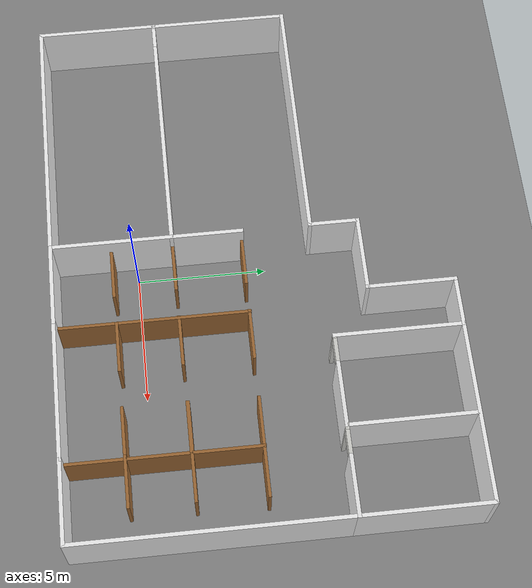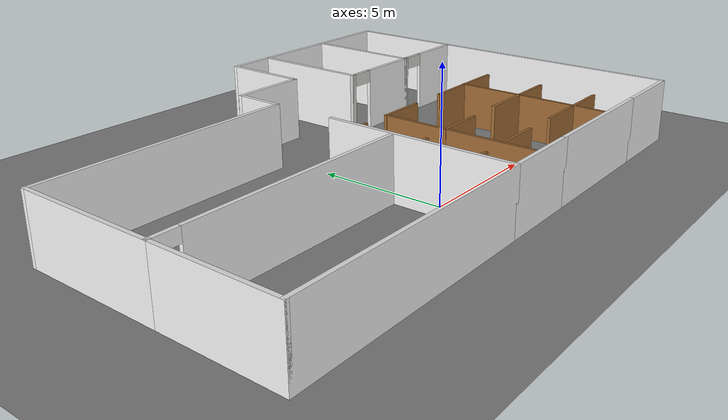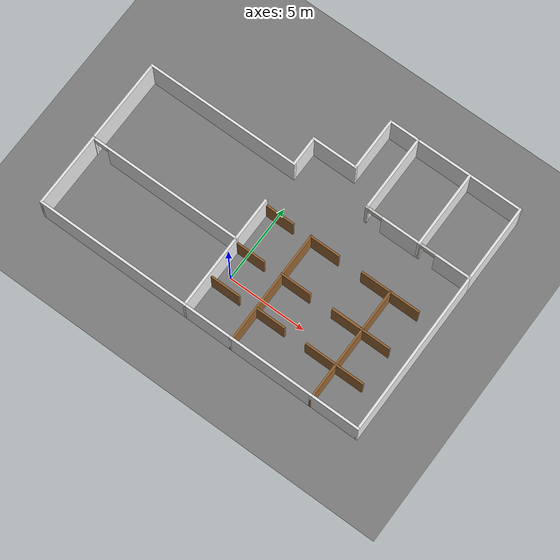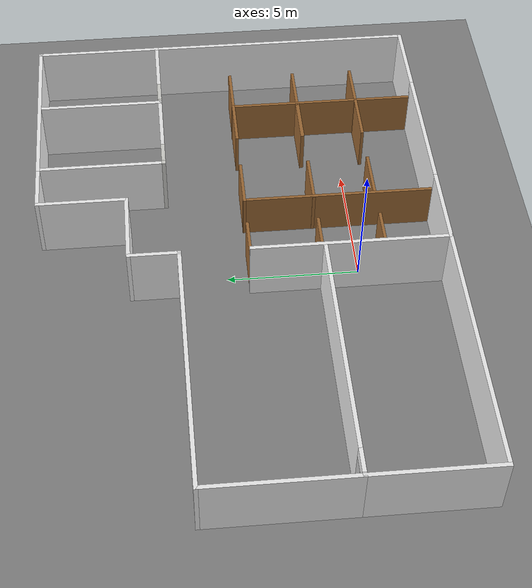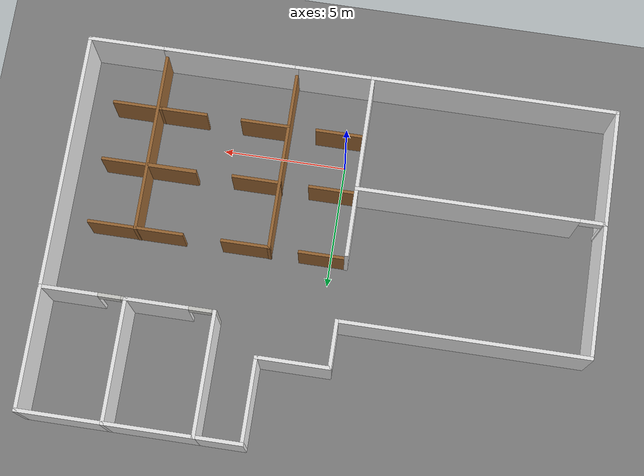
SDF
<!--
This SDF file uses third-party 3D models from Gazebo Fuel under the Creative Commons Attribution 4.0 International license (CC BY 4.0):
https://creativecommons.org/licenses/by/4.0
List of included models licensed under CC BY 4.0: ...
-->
<sdf version="1.9">
 <world name="office">
  <physics name="default_physics" type="ode">
   <max_step_size>0.0025</max_step_size>
   <real_time_factor>1</real_time_factor>
  </physics>
  <plugin name="gz::sim::systems::Physics" filename="gz-sim-physics-system"/>
  <plugin name="gz::sim::systems::UserCommands" filename="gz-sim-user-commands-system"/>
  <plugin name="gz::sim::systems::SceneBroadcaster" filename="gz-sim-scene-broadcaster-system"/>
  <plugin name="gz::sim::systems::Imu" filename="gz-sim-imu-system"/>
  <plugin name="gz::sim::systems::Sensors" filename="gz-sim-sensors-system">
   <render_engine>ogre2</render_engine>
  </plugin>
  <scene>
   <ambient>1 1 1 1</ambient>
   <background>0.3 0.7 0.9 1</background>
   <shadows>0</shadows>
   <grid>1</grid>
  </scene>
  <model name="ground_plane">
   <static>1</static>
   <link name="link">
    <collision name="collision">
     <geometry><plane><normal>0 0 1</normal><size>100 100</size></plane></geometry>
    </collision>
    <visual name="visual">
     <cast_shadows>0</cast_shadows>
     <geometry><plane><normal>0 0 1</normal><size>100 100</size></plane></geometry>
     <material>
      <ambient>0.95 0.95 0.95 1</ambient>
      <diffuse>0.5 0.5 0.5 1</diffuse>
      <specular>0.1 0.1 0.1 1</specular>
     </material>
    </visual>
   </link>
  </model>
  <light type="directional" name="directional_light">
   <pose>0 0 10 0 0 0</pose>
   <diffuse>0.8 0.8 0.8 1</diffuse>
   <specular>0.2 0.2 0.2 1</specular>
   <attenuation>
    <range>20</range>
    <constant>0.9</constant>
    <linear>0.01</linear>
    <quadratic>0.001</quadratic>
   </attenuation>
   <direction>-0.5 0.1 -0.9</direction>
  </light>
  <model name="office_wall">
   <pose>0.2046 4.41336 0 0 0 0</pose>
   <link name="Wall_Around_1">
    <collision name="Wall_Around_1_Collision">
     <geometry><box><size>5.5 0.15 2.5</size></box></geometry>
     <pose>0 0 1.25 0 0 0</pose>
    </collision>
    <visual name="Wall_Around_1_Visual">
     <pose>0 0 1.25 0 0 0</pose>
     <geometry><box><size>5.5 0.15 2.5</size></box></geometry>
     <material>
      <script><uri>file://media/materials/scripts/gazebo.material</uri><name>Gazebo/White</name></script>
      <ambient>0.435294 0.796078 0.67451 1</ambient>
     </material>
     <meta><layer>0</layer></meta>
    </visual>
    <pose>4.925 -7.6 0 0 0 0</pose>
   </link>
   <link name="Wall_Around_2">
    <collision name="Wall_Around_2_Collision">
     <geometry><box><size>3.25 0.15 2.5</size></box></geometry>
     <pose>0 0 1.25 0 0 0</pose>
    </collision>
    <visual name="Wall_Around_2_Visual">
     <pose>0 0 1.25 0 0 0</pose>
     <geometry><box><size>3.25 0.15 2.5</size></box></geometry>
     <material>
      <script><uri>file://media/materials/scripts/gazebo.material</uri><name>Gazebo/White</name></script>
      <ambient>0.435294 0.796078 0.67451 1</ambient>
     </material>
     <meta><layer>0</layer></meta>
    </visual>
    <pose>9.15 -7.6 0 0 0 0</pose>
   </link>
   <link name="Wall_Around_3">
    <collision name="Wall_Around_3_Collision">
     <geometry><box><size>10.5 0.15 2.5</size></box></geometry>
     <pose>0 0 1.25 0 0 0</pose>
    </collision>
    <visual name="Wall_Around_3_Visual">
     <pose>0 0 1.25 0 0 0</pose>
     <geometry><box><size>10.5 0.15 2.5</size></box></geometry>
     <material>
      <script><uri>file://media/materials/scripts/gazebo.material</uri><name>Gazebo/White</name></script>
      <ambient>0.435294 0.796078 0.67451 1</ambient>
     </material>
     <meta><layer>0</layer></meta>
    </visual>
    <pose>10.7 -2.425 0 0 0 1.5708</pose>
   </link>
   <link name="Wall_Around_4">
    <collision name="Wall_Around_4_Collision">
     <geometry><box><size>5 0.15 2.5</size></box></geometry>
     <pose>0 0 1.25 0 0 0</pose>
    </collision>
    <visual name="Wall_Around_4_Visual">
     <pose>0 0 1.25 0 0 0</pose>
     <geometry><box><size>5 0.15 2.5</size></box></geometry>
     <material>
      <script><uri>file://media/materials/scripts/gazebo.material</uri><name>Gazebo/White</name></script>
      <ambient>0.760784 0.662745 0.627451 1</ambient>
     </material>
     <meta><layer>0</layer></meta>
    </visual>
    <pose>10.7 5.175 0 0 0 1.5708</pose>
   </link>
   <link name="Wall_Around_5">
    <collision name="Wall_Around_5_Collision">
     <geometry><box><size>7 0.15 2.5</size></box></geometry>
     <pose>0 0 1.25 0 0 0</pose>
    </collision>
    <visual name="Wall_Around_5_Visual">
     <pose>0 0 1.25 0 0 0</pose>
     <geometry><box><size>7 0.15 2.5</size></box></geometry>
     <material>
      <script><uri>file://media/materials/scripts/gazebo.material</uri><name>Gazebo/White</name></script>
      <ambient>1 1 1 1</ambient>
     </material>
     <meta><layer>0</layer></meta>
    </visual>
    <pose>7.275 7.6 0 0 0 3.14159</pose>
   </link>
   <link name="Wall_Around_6">
    <collision name="Wall_Around_6_Collision">
     <geometry><box><size>2 0.15 2.5</size></box></geometry>
     <pose>0 0 1.25 0 0 0</pose>
    </collision>
    <visual name="Wall_Around_6_Visual">
     <pose>0 0 1.25 0 0 0</pose>
     <geometry><box><size>2 0.15 2.5</size></box></geometry>
     <material>
      <script><uri>file://media/materials/scripts/gazebo.material</uri><name>Gazebo/White</name></script>
      <ambient>0.760784 0.662745 0.627451 1</ambient>
     </material>
     <meta><layer>0</layer></meta>
    </visual>
    <pose>2.925 7.6 0 0 0 3.14159</pose>
   </link>
   <link name="Wall_Around_7">
    <collision name="Wall_Around_7_Collision">
     <geometry><box><size>3.5 0.15 2.5</size></box></geometry>
     <pose>0 0 1.25 0 0 0</pose>
    </collision>
    <visual name="Wall_Around_7_Visual">
     <pose>0 0 1.25 0 0 0</pose>
     <geometry><box><size>3.5 0.15 2.5</size></box></geometry>
     <material>
      <script><uri>file://media/materials/scripts/gazebo.material</uri><name>Gazebo/White</name></script>
      <ambient>0.760784 0.662745 0.627451 1</ambient>
     </material>
     <meta><layer>0</layer></meta>
    </visual>
    <pose>2 5.925 0 0 0 -1.5708</pose>
   </link>
   <link name="Wall_Around_8">
    <collision name="Wall_Around_8_Collision">
     <geometry><box><size>3 0.15 2.5</size></box></geometry>
     <pose>0 0 1.25 0 0 0</pose>
    </collision>
    <visual name="Wall_Around_8_Visual">
     <pose>0 0 1.25 0 0 0</pose>
     <geometry><box><size>3 0.15 2.5</size></box></geometry>
     <material>
      <script><uri>file://media/materials/scripts/gazebo.material</uri><name>Gazebo/White</name></script>
      <ambient>0.760784 0.662745 0.627451 1</ambient>
     </material>
     <meta><layer>0</layer></meta>
    </visual>
    <pose>0.575 4.25 0 0 0 3.14159</pose>
   </link>
   <link name="Wall_Around_9">
    <collision name="Wall_Around_9_Collision">
     <geometry><box><size>2 0.15 2.5</size></box></geometry>
     <pose>0 0 1.25 0 0 0</pose>
    </collision>
    <visual name="Wall_Around_9_Visual">
     <pose>0 0 1.25 0 0 0</pose>
     <geometry><box><size>2 0.15 2.5</size></box></geometry>
     <material>
      <script><uri>file://media/materials/scripts/gazebo.material</uri><name>Gazebo/White</name></script>
      <ambient>0.760784 0.662745 0.627451 1</ambient>
     </material>
     <meta><layer>0</layer></meta>
    </visual>
    <pose>-0.85 3.325 0 0 0 -1.5708</pose>
   </link>
   <link name="Wall_Around_10">
    <collision name="Wall_Around_10_Collision">
     <geometry><box><size>10 0.15 2.5</size></box></geometry>
     <pose>0 0 1.25 0 0 0</pose>
    </collision>
    <visual name="Wall_Around_10_Visual">
     <pose>0 0 1.25 0 0 0</pose>
     <geometry><box><size>10 0.15 2.5</size></box></geometry>
     <material>
      <script><uri>file://media/materials/scripts/gazebo.material</uri><name>Gazebo/White</name></script>
      <ambient>0.760784 0.662745 0.627451 1</ambient>
     </material>
     <meta><layer>0</layer></meta>
    </visual>
    <pose>-5.775 2.4 0 0 0 3.14159</pose>
   </link>
   <link name="Wall_Around_11">
    <collision name="Wall_Around_11_Collision">
     <geometry><box><size>5.5 0.15 2.5</size></box></geometry>
     <pose>0 0 1.25 0 0 0</pose>
    </collision>
    <visual name="Wall_Around_11_Visual">
     <pose>0 0 1.25 0 0 0</pose>
     <geometry><box><size>5.5 0.15 2.5</size></box></geometry>
     <material>
      <script><uri>file://media/materials/scripts/gazebo.material</uri><name>Gazebo/White</name></script>
      <ambient>0.760784 0.662745 0.627451 1</ambient>
     </material>
     <meta><layer>0</layer></meta>
    </visual>
    <pose>-10.7 -0.275 0 0 0 -1.5708</pose>
   </link>
   <link name="Wall_Around_12">
    <collision name="Wall_Around_12_Collision">
     <geometry><box><size>4.8 0.15 2.5</size></box></geometry>
     <pose>0 0 1.25 0 0 0</pose>
    </collision>
    <visual name="Wall_Around_12_Visual">
     <pose>0 0 1.25 0 0 0</pose>
     <geometry><box><size>4.8 0.15 2.5</size></box></geometry>
     <material>
      <script><uri>file://media/materials/scripts/gazebo.material</uri><name>Gazebo/White</name></script>
      <ambient>1 0.764706 0.305882 1</ambient>
     </material>
     <meta><layer>0</layer></meta>
    </visual>
    <pose>-10.7 -5.275 0 0 0 -1.5708</pose>
   </link>
   <link name="Wall_Around_13">
    <collision name="Wall_Around_13_Collision">
     <geometry><box><size>10 0.15 2.5</size></box></geometry>
     <pose>0 0 1.25 0 0 0</pose>
    </collision>
    <visual name="Wall_Around_13_Visual">
     <pose>0 0 1.25 0 0 0</pose>
     <geometry><box><size>10 0.15 2.5</size></box></geometry>
     <material>
      <script><uri>file://media/materials/scripts/gazebo.material</uri><name>Gazebo/White</name></script>
      <ambient>1 0.764706 0.305882 1</ambient>
     </material>
     <meta><layer>0</layer></meta>
    </visual>
    <pose>-5.775 -7.6 0 0 0 0</pose>
   </link>
   <link name="Wall_Around_14">
    <collision name="Wall_Around_14_Collision">
     <geometry><box><size>3.25 0.15 2.5</size></box></geometry>
     <pose>0 0 1.25 0 0 0</pose>
    </collision>
    <visual name="Wall_Around_14_Visual">
     <pose>0 0 1.25 0 0 0</pose>
     <geometry><box><size>3.25 0.15 2.5</size></box></geometry>
     <material>
      <script><uri>file://media/materials/scripts/gazebo.material</uri><name>Gazebo/White</name></script>
      <ambient>0.435294 0.796078 0.67451 1</ambient>
     </material>
     <meta><layer>0</layer></meta>
    </visual>
    <pose>0.7 -7.6 0 0 0 0</pose>
   </link>
   <link name="Wall_Station_1">
    <collision name="Wall_Station_1_Collision">
     <geometry><box><size>7.5 0.15 2.5</size></box></geometry>
     <pose>0 0 1.25 0 0 0</pose>
    </collision>
    <visual name="Wall_Station_1_Visual">
     <pose>0 0 1.25 0 0 0</pose>
     <geometry><box><size>7.5 0.15 2.5</size></box></geometry>
     <material>
      <script><uri>file://media/materials/scripts/gazebo.material</uri><name>Gazebo/White</name></script>
     </material>
     <meta><layer>0</layer></meta>
    </visual>
    <pose>-0.85 -3.925 0 0 0 1.5708</pose>
   </link>
   <link name="Wall_Station_2">
    <collision name="Wall_Station_2_Collision">
     <geometry><box><size>7.5 0.12 1.8</size></box></geometry>
     <pose>0 0 0.9 0 0 0</pose>
    </collision>
    <visual name="Wall_Station_2_Visual">
     <pose>0 0 0.9 0 0 0</pose>
     <geometry><box><size>7.5 0.12 1.8</size></box></geometry>
     <material><ambient>0.6 0.4 0.2 1</ambient><diffuse>0.6 0.4 0.2 1</diffuse></material>
     <meta><layer>0</layer></meta>
    </visual>
    <pose>2.25 -3.925 0 0 0 1.5708</pose>
   </link>
   <link name="Wall_Station_3">
    <collision name="Wall_Station_3_Collision">
     <geometry><box><size>7.5 0.12 1.8</size></box></geometry>
     <pose>0 0 0.9 0 0 0</pose>
    </collision>
    <visual name="Wall_Station_3_Visual">
     <pose>0 0 0.9 0 0 0</pose>
     <geometry><box><size>7.5 0.12 1.8</size></box></geometry>
     <material><ambient>0.6 0.4 0.2 1</ambient><diffuse>0.6 0.4 0.2 1</diffuse></material>
     <meta><layer>0</layer></meta>
    </visual>
    <pose>7.6 -3.925 0 0 0 1.5708</pose>
   </link>
   <link name="Wall_Station_4">
    <collision name="Wall_Station_4_Collision">
     <geometry><box><size>2 0.12 1.8</size></box></geometry>
     <pose>0 0 0.9 0 0 0</pose>
    </collision>
    <visual name="Wall_Station_4_Visual">
     <pose>0 0 0.9 0 0 0</pose>
     <geometry><box><size>2 0.12 1.8</size></box></geometry>
     <material><ambient>0.6 0.4 0.2 1</ambient><diffuse>0.6 0.4 0.2 1</diffuse></material>
     <meta><layer>0</layer></meta>
    </visual>
    <pose>0.075 -0.25 0 0 0 0</pose>
   </link>
   <link name="Wall_Station_5">
    <collision name="Wall_Station_5_Collision">
     <geometry><box><size>2 0.12 1.8</size></box></geometry>
     <pose>0 0 0.9 0 0 0</pose>
    </collision>
    <visual name="Wall_Station_5_Visual">
     <pose>0 0 0.9 0 0 0</pose>
     <geometry><box><size>2 0.12 1.8</size></box></geometry>
     <material><ambient>0.6 0.4 0.2 1</ambient><diffuse>0.6 0.4 0.2 1</diffuse></material>
     <meta><layer>0</layer></meta>
    </visual>
    <pose>0.075 -2.95 0 0 0 0</pose>
   </link>
   <link name="Wall_Station_6">
    <collision name="Wall_Station_6_Collision">
     <geometry><box><size>2 0.12 1.8</size></box></geometry>
     <pose>0 0 0.9 0 0 0</pose>
    </collision>
    <visual name="Wall_Station_6_Visual">
     <pose>0 0 0.9 0 0 0</pose>
     <geometry><box><size>2 0.12 1.8</size></box></geometry>
     <material><ambient>0.6 0.4 0.2 1</ambient><diffuse>0.6 0.4 0.2 1</diffuse></material>
     <meta><layer>0</layer></meta>
    </visual>
    <pose>0.146673 -5.32593 0 0 0 0</pose>
   </link>
   <link name="Wall_Station_7">
    <collision name="Wall_Station_7_Collision">
     <geometry><box><size>2 0.12 1.8</size></box></geometry>
     <pose>0 0 0.9 0 0 0</pose>
    </collision>
    <visual name="Wall_Station_7_Visual">
     <pose>0 0 0.9 0 0 0</pose>
     <geometry><box><size>2 0.12 1.8</size></box></geometry>
     <material><ambient>0.6 0.4 0.2 1</ambient><diffuse>0.6 0.4 0.2 1</diffuse></material>
     <meta><layer>0</layer></meta>
    </visual>
    <pose>3.175 -0.25 0 0 0 0</pose>
   </link>
   <link name="Wall_Station_8">
    <collision name="Wall_Station_8_Collision">
     <geometry><box><size>2 0.12 1.8</size></box></geometry>
     <pose>0 0 0.9 0 0 0</pose>
    </collision>
    <visual name="Wall_Station_8_Visual">
     <pose>0 0 0.9 0 0 0</pose>
     <geometry><box><size>2 0.12 1.8</size></box></geometry>
     <material><ambient>0.6 0.4 0.2 1</ambient><diffuse>0.6 0.4 0.2 1</diffuse></material>
     <meta><layer>0</layer></meta>
    </visual>
    <pose>3.17073 -2.92995 0 0 0 0</pose>
   </link>
   <link name="Wall_Station_9">
    <collision name="Wall_Station_9_Collision">
     <geometry><box><size>2 0.12 1.8</size></box></geometry>
     <pose>0 0 0.9 0 0 0</pose>
    </collision>
    <visual name="Wall_Station_9_Visual">
     <pose>0 0 0.9 0 0 0</pose>
     <geometry><box><size>2 0.12 1.8</size></box></geometry>
     <material><ambient>0.6 0.4 0.2 1</ambient><diffuse>0.6 0.4 0.2 1</diffuse></material>
     <meta><layer>0</layer></meta>
    </visual>
    <pose>3.19399 -5.30267 0 0 0 0</pose>
   </link>
   <link name="Wall_Station_10">
    <collision name="Wall_Station_10_Collision">
     <geometry><box><size>2 0.12 1.8</size></box></geometry>
     <pose>0 0 0.9 0 0 0</pose>
    </collision>
    <visual name="Wall_Station_10_Visual">
     <pose>0 0 0.9 0 0 0</pose>
     <geometry><box><size>2 0.12 1.8</size></box></geometry>
     <material><ambient>0.6 0.4 0.2 1</ambient><diffuse>0.6 0.4 0.2 1</diffuse></material>
     <meta><layer>0</layer></meta>
    </visual>
    <pose>6.675 -0.25 0 0 0 3.14159</pose>
   </link>
   <link name="Wall_Station_11">
    <collision name="Wall_Station_11_Collision">
     <geometry><box><size>2 0.15 1.8</size></box></geometry>
     <pose>0 0 0.9 0 0 0</pose>
    </collision>
    <visual name="Wall_Station_11_Visual">
     <pose>0 0 0.9 0 0 0</pose>
     <geometry><box><size>2 0.15 1.8</size></box></geometry>
     <material><ambient>0.6 0.4 0.2 1</ambient><diffuse>0.6 0.4 0.2 1</diffuse></material>
     <meta><layer>0</layer></meta>
    </visual>
    <pose>6.60442 -2.88309 0 0 0 3.14159</pose>
   </link>
   <link name="Wall_Station_12">
    <collision name="Wall_Station_12_Collision">
     <geometry><box><size>2 0.12 1.8</size></box></geometry>
     <pose>0 0 0.9 0 0 0</pose>
    </collision>
    <visual name="Wall_Station_12_Visual">
     <pose>0 0 0.9 0 0 0</pose>
     <geometry><box><size>2 0.12 1.8</size></box></geometry>
     <material><ambient>0.6 0.4 0.2 1</ambient><diffuse>0.6 0.4 0.2 1</diffuse></material>
     <meta><layer>0</layer></meta>
    </visual>
    <pose>6.58058 -5.30866 0 0 0 3.14159</pose>
   </link>
   <link name="Wall_Station_13">
    <collision name="Wall_Station_13_Collision">
     <geometry><box><size>2 0.12 1.8</size></box></geometry>
     <pose>0 0 0.9 0 0 0</pose>
    </collision>
    <visual name="Wall_Station_13_Visual">
     <pose>0 0 0.9 0 0 0</pose>
     <geometry><box><size>2 0.12 1.8</size></box></geometry>
     <material><ambient>0.6 0.4 0.2 1</ambient><diffuse>0.6 0.4 0.2 1</diffuse></material>
     <meta><layer>0</layer></meta>
    </visual>
    <pose>8.525 -0.25 0 0 0 0</pose>
   </link>
   <link name="Wall_Station_14">
    <collision name="Wall_Station_14_Collision">
     <geometry><box><size>2 0.12 1.8</size></box></geometry>
     <pose>0 0 0.9 0 0 0</pose>
    </collision>
    <visual name="Wall_Station_14_Visual">
     <pose>0 0 0.9 0 0 0</pose>
     <geometry><box><size>2 0.12 1.8</size></box></geometry>
     <material><ambient>0.6 0.4 0.2 1</ambient><diffuse>0.6 0.4 0.2 1</diffuse></material>
     <meta><layer>0</layer></meta>
    </visual>
    <pose>8.45441 -2.88309 0 0 0 0</pose>
   </link>
   <link name="Wall_Station_15">
    <collision name="Wall_Station_15_Collision">
     <geometry><box><size>2 0.12 1.8</size></box></geometry>
     <pose>0 0 0.9 0 0 0</pose>
    </collision>
    <visual name="Wall_Station_15_Visual">
     <pose>0 0 0.9 0 0 0</pose>
     <geometry><box><size>2 0.12 1.8</size></box></geometry>
     <material><ambient>0.6 0.4 0.2 1</ambient><diffuse>0.6 0.4 0.2 1</diffuse></material>
     <meta><layer>0</layer></meta>
    </visual>
    <pose>8.43058 -5.30866 0 0 0 0</pose>
   </link>
   <link name="Wall_Office_1">
    <pose>9.025 2.75 0 0 0 3.14159</pose>
    <visual name="Wall_Office_1_Visual_0">
     <pose>-0.575969 0 1.25 0 0 0</pose>
     <geometry><box><size>2.34806 0.15 2.5</size></box></geometry>
     <material>
      <ambient>0.9 0.9 0.9 1</ambient>
      <diffuse>0.9 0.9 0.9 1</diffuse>
      <specular>0.1 0.1 0.1 1</specular>
     </material>
     <meta><layer>0</layer></meta>
    </visual>
    <collision name="Wall_Office_1_Collision_0">
     <geometry><box><size>2.34806 0.15 2.5</size></box></geometry>
     <pose>-0.575969 0 1.25 0 0 0</pose>
    </collision>
    <visual name="Wall_Office_1_Visual_1">
     <pose>1.62403 0 1.25 0 0 0</pose>
     <geometry><box><size>0.251937 0.15 2.5</size></box></geometry>
     <material>
      <script><uri>file://media/materials/scripts/gazebo.material</uri><name>Gazebo/CeilingTiled</name></script>
      <ambient>1 1 1 1</ambient>
     </material>
     <meta><layer>0</layer></meta>
    </visual>
    <collision name="Wall_Office_1_Collision_1">
     <geometry><box><size>0.251937 0.15 2.5</size></box></geometry>
     <pose>1.62403 0 1.25 0 0 0</pose>
    </collision>
    <visual name="Wall_Office_1_Visual_2">
     <pose>1.04806 0 2.25 0 0 0</pose>
     <geometry><box><size>0.9 0.15 0.5</size></box></geometry>
     <material>
      <script><uri>file://media/materials/scripts/gazebo.material</uri><name>Gazebo/CeilingTiled</name></script>
      <ambient>1 1 1 1</ambient>
     </material>
     <meta><layer>0</layer></meta>
    </visual>
    <collision name="Wall_Office_1_Collision_2">
     <geometry><box><size>0.9 0.15 0.5</size></box></geometry>
     <pose>1.04806 0 2.25 0 0 0</pose>
    </collision>
   </link>
   <link name="Wall_Ofiice_2">
    <collision name="Wall_Ofiice_2_Collision">
     <geometry><box><size>5 0.15 2.5</size></box></geometry>
     <pose>0 0 1.25 0 0 0</pose>
    </collision>
    <visual name="Wall_Ofiice_2_Visual">
     <pose>0 0 1.25 0 0 0</pose>
     <geometry><box><size>5 0.15 2.5</size></box></geometry>
     <material>
      <script><uri>file://media/materials/scripts/gazebo.material</uri><name>Gazebo/White</name></script>
      <ambient>1 1 1 1</ambient>
     </material>
     <meta><layer>0</layer></meta>
    </visual>
    <pose>7.35 5.175 0 0 0 1.5708</pose>
   </link>
   <link name="Wall_Ofiice_3">
    <pose>5.6 2.75 0 0 0 0</pose>
    <visual name="Wall_Ofiice_3_Visual_0">
     <pose>-1.72741 0 1.25 0 0 0</pose>
     <geometry><box><size>0.195188 0.15 2.5</size></box></geometry>
     <material>
      <script><uri>file://media/materials/scripts/gazebo.material</uri><name>Gazebo/CeilingTiled</name></script>
      <ambient>1 1 1 1</ambient>
     </material>
     <meta><layer>0</layer></meta>
    </visual>
    <collision name="Wall_Ofiice_3_Collision_0">
     <geometry><box><size>0.195188 0.15 2.5</size></box></geometry>
     <pose>-1.72741 0 1.25 0 0 0</pose>
    </collision>
    <visual name="Wall_Ofiice_3_Visual_1">
     <pose>0.547594 0 1.25 0 0 0</pose>
     <geometry><box><size>2.55481 0.15 2.5</size></box></geometry>
     <material>
      <ambient>0.9 0.9 0.9 1</ambient>
      <diffuse>0.9 0.9 0.9 1</diffuse>
      <specular>0.1 0.1 0.1 1</specular>
     </material>
     <meta><layer>0</layer></meta>
    </visual>
    <collision name="Wall_Ofiice_3_Collision_1">
     <geometry><box><size>2.55481 0.15 2.5</size></box></geometry>
     <pose>0.547594 0 1.25 0 0 0</pose>
    </collision>
    <visual name="Wall_Ofiice_3_Visual_2">
     <pose>-1.17981 0 2.25 0 0 0</pose>
     <geometry><box><size>0.9 0.15 0.5</size></box></geometry>
     <material>
      <script><uri>file://media/materials/scripts/gazebo.material</uri><name>Gazebo/CeilingTiled</name></script>
      <ambient>1 1 1 1</ambient>
     </material>
     <meta><layer>0</layer></meta>
    </visual>
    <collision name="Wall_Ofiice_3_Collision_2">
     <geometry><box><size>0.9 0.15 0.5</size></box></geometry>
     <pose>-1.17981 0 2.25 0 0 0</pose>
    </collision>
   </link>
   <link name="Wall_Ofiice_4">
    <collision name="Wall_Ofiice_4_Collision">
     <geometry><box><size>5 0.15 2.5</size></box></geometry>
     <pose>0 0 1.25 0 0 0</pose>
    </collision>
    <visual name="Wall_Ofiice_4_Visual">
     <pose>0 0 1.25 0 0 0</pose>
     <geometry><box><size>5 0.15 2.5</size></box></geometry>
     <material>
      <script><uri>file://media/materials/scripts/gazebo.material</uri><name>Gazebo/White</name></script>
      <ambient>1 1 1 1</ambient>
     </material>
     <meta><layer>0</layer></meta>
    </visual>
    <pose>3.85 5.175 0 0 0 1.5708</pose>
   </link>
   <link name="Wall_Pantry">
    <pose>-5.775 -2.95 0 0 0 0</pose>
    <visual name="Wall_Pantry_Visual_0">
     <pose>-4.90481 0 1.25 0 0 0</pose>
     <geometry><box><size>0.190383 0.15 2.5</size></box></geometry>
     <material>
      <script><uri>file://media/materials/scripts/gazebo.material</uri><name>Gazebo/White</name></script>
      <ambient>1 0.764706 0.305882 1</ambient>
     </material>
     <meta><layer>0</layer></meta>
    </visual>
    <collision name="Wall_Pantry_Collision_0">
     <geometry><box><size>0.190383 0.15 2.5</size></box></geometry>
     <pose>-4.90481 0 1.25 0 0 0</pose>
    </collision>
    <visual name="Wall_Pantry_Visual_1">
     <pose>0.545191 0 1.25 0 0 0</pose>
     <geometry><box><size>8.90962 0.15 2.5</size></box></geometry>
     <material>
      <script><uri>file://media/materials/scripts/gazebo.material</uri><name>Gazebo/White</name></script>
      <ambient>1 0.764706 0.305882 1</ambient>
     </material>
     <meta><layer>0</layer></meta>
    </visual>
    <collision name="Wall_Pantry_Collision_1">
     <geometry><box><size>8.90962 0.15 2.5</size></box></geometry>
     <pose>0.545191 0 1.25 0 0 0</pose>
    </collision>
    <visual name="Wall_Pantry_Visual_2">
     <pose>-4.35962 0 2.25 0 0 0</pose>
     <geometry><box><size>0.9 0.15 0.5</size></box></geometry>
     <material>
      <script><uri>file://media/materials/scripts/gazebo.material</uri><name>Gazebo/White</name></script>
      <ambient>1 0.764706 0.305882 1</ambient>
     </material>
     <meta><layer>0</layer></meta>
    </visual>
    <collision name="Wall_Pantry_Collision_2">
     <geometry><box><size>0.9 0.15 0.5</size></box></geometry>
     <pose>-4.35962 0 2.25 0 0 0</pose>
    </collision>
   </link>
   <static>1</static>
  </model>
 </world>
</sdf>
